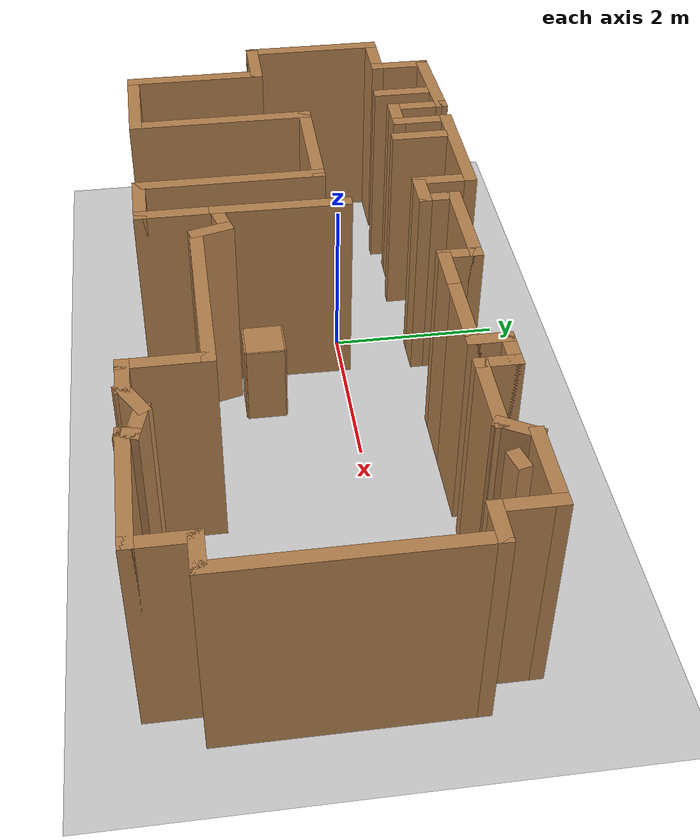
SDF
<sdf version="1.7">
 <world name="default">
  <light name="sun" type="directional">
   <pose>0 0 10 0 -0 0</pose>
   <diffuse>0.8 0.8 0.8 1</diffuse>
   <specular>0.2 0.2 0.2 1</specular>
   <attenuation>
    <range>1000</range>
    <constant>0.9</constant>
    <linear>0.01</linear>
    <quadratic>0.001</quadratic>
   </attenuation>
   <direction>-0.5 0.1 -0.9</direction>
   <spot><inner_angle>0</inner_angle><outer_angle>0</outer_angle><falloff>0</falloff></spot>
  </light>
  <model name="ground_plane">
   <static>1</static>
   <link name="link">
    <collision name="collision">
     <geometry><plane><normal>0 0 1</normal><size>100 100</size></plane></geometry>
     <surface>
      <contact><collide_bitmask>65535</collide_bitmask></contact>
      <friction><ode><mu>100</mu><mu2>50</mu2></ode></friction>
     </surface>
    </collision>
    <visual name="visual">
     <cast_shadows>0</cast_shadows>
     <geometry><plane><normal>0 0 1</normal><size>100 100</size></plane></geometry>
     <material>
      <script><uri>file://media/materials/scripts/gazebo.material</uri><name>Gazebo/Grey</name></script>
     </material>
    </visual>
   </link>
  </model>
  <gravity>0 0 -9.8</gravity>
  <magnetic_field>6e-06 2.3e-05 -4.2e-05</magnetic_field>
  <atmosphere type="adiabatic"/>
  <physics name="default_physics" default="0" type="ode">
   <max_step_size>0.001</max_step_size>
   <real_time_factor>1</real_time_factor>
   <real_time_update_rate>1000</real_time_update_rate>
  </physics>
  <scene><ambient>0.4 0.4 0.4 1</ambient><background>0.7 0.7 0.7 1</background><shadows>1</shadows></scene>
  <audio><device>default</device></audio>
  <spherical_coordinates>
   <surface_model>EARTH_WGS84</surface_model>
   <latitude_deg>0</latitude_deg>
   <longitude_deg>0</longitude_deg>
   <elevation>0</elevation>
   <heading_deg>0</heading_deg>
  </spherical_coordinates>
  <model name="map_18">
   <pose>1.21527 -0.53086 0 0 -0 0</pose>
   <link name="Wall_10">
    <collision name="Wall_10_Collision">
     <geometry><box><size>1.25 0.15 2.5</size></box></geometry>
     <pose>0 0 1.25 0 -0 0</pose>
    </collision>
    <visual name="Wall_10_Visual">
     <pose>0 0 1.25 0 -0 0</pose>
     <geometry><box><size>1.25 0.15 2.5</size></box></geometry>
     <material>
      <script><uri>file://media/materials/scripts/gazebo.material</uri><name>Gazebo/Wood</name></script>
      <ambient>1 1 1 1</ambient>
     </material>
     <meta><layer>0</layer></meta>
    </visual>
    <pose>-3.27198 -1.78163 0 0 -0 0</pose>
   </link>
   <link name="Wall_11">
    <collision name="Wall_11_Collision">
     <geometry><box><size>2.25 0.15 2.5</size></box></geometry>
     <pose>0 0 1.25 0 -0 0</pose>
    </collision>
    <visual name="Wall_11_Visual">
     <pose>0 0 1.25 0 -0 0</pose>
     <geometry><box><size>2.25 0.15 2.5</size></box></geometry>
     <material>
      <script><uri>file://media/materials/scripts/gazebo.material</uri><name>Gazebo/Wood</name></script>
      <ambient>1 1 1 1</ambient>
     </material>
     <meta><layer>0</layer></meta>
    </visual>
    <pose>-2.72198 -0.731633 0 0 -0 1.5708</pose>
   </link>
   <link name="Wall_12">
    <collision name="Wall_12_Collision">
     <geometry><box><size>1.5 0.15 2.5</size></box></geometry>
     <pose>0 0 1.25 0 -0 0</pose>
    </collision>
    <visual name="Wall_12_Visual">
     <pose>0 0 1.25 0 -0 0</pose>
     <geometry><box><size>1.5 0.15 2.5</size></box></geometry>
     <material>
      <script><uri>file://media/materials/scripts/gazebo.material</uri><name>Gazebo/Wood</name></script>
      <ambient>1 1 1 1</ambient>
     </material>
     <meta><layer>0</layer></meta>
    </visual>
    <pose>-2.04698 0.318367 0 0 -0 0</pose>
   </link>
   <link name="Wall_13">
    <collision name="Wall_13_Collision">
     <geometry><box><size>2.25 0.15 2.5</size></box></geometry>
     <pose>0 0 1.25 0 -0 0</pose>
    </collision>
    <visual name="Wall_13_Visual">
     <pose>0 0 1.25 0 -0 0</pose>
     <geometry><box><size>2.25 0.15 2.5</size></box></geometry>
     <material>
      <script><uri>file://media/materials/scripts/gazebo.material</uri><name>Gazebo/Wood</name></script>
      <ambient>1 1 1 1</ambient>
     </material>
     <meta><layer>0</layer></meta>
    </visual>
    <pose>-1.37198 -0.731633 0 0 -0 -1.5708</pose>
   </link>
   <link name="Wall_14">
    <collision name="Wall_14_Collision">
     <geometry><box><size>0.75 0.15 2.5</size></box></geometry>
     <pose>0 0 1.25 0 -0 0</pose>
    </collision>
    <visual name="Wall_14_Visual">
     <pose>0 0 1.25 0 -0 0</pose>
     <geometry><box><size>0.75 0.15 2.5</size></box></geometry>
     <material>
      <script><uri>file://media/materials/scripts/gazebo.material</uri><name>Gazebo/Wood</name></script>
      <ambient>1 1 1 1</ambient>
     </material>
     <meta><layer>0</layer></meta>
    </visual>
    <pose>-1.07198 -1.78163 0 0 -0 0</pose>
   </link>
   <link name="Wall_15">
    <collision name="Wall_15_Collision">
     <geometry><box><size>1 0.15 2.5</size></box></geometry>
     <pose>0 0 1.25 0 -0 0</pose>
    </collision>
    <visual name="Wall_15_Visual">
     <pose>0 0 1.25 0 -0 0</pose>
     <geometry><box><size>1 0.15 2.5</size></box></geometry>
     <material>
      <script><uri>file://media/materials/scripts/gazebo.material</uri><name>Gazebo/Wood</name></script>
      <ambient>1 1 1 1</ambient>
     </material>
     <meta><layer>0</layer></meta>
    </visual>
    <pose>-0.771981 -1.35663 0 0 -0 1.5708</pose>
   </link>
   <link name="Wall_16">
    <collision name="Wall_16_Collision">
     <geometry><box><size>0.5 0.15 2.5</size></box></geometry>
     <pose>0 0 1.25 0 -0 0</pose>
    </collision>
    <visual name="Wall_16_Visual">
     <pose>0 0 1.25 0 -0 0</pose>
     <geometry><box><size>0.5 0.15 2.5</size></box></geometry>
     <material>
      <script><uri>file://media/materials/scripts/gazebo.material</uri><name>Gazebo/Wood</name></script>
      <ambient>1 1 1 1</ambient>
     </material>
     <meta><layer>0</layer></meta>
    </visual>
    <pose>-0.602944 -0.88634 0 0 -0 0.261799</pose>
   </link>
   <link name="Wall_17">
    <collision name="Wall_17_Collision">
     <geometry><box><size>0.5 0.15 2.5</size></box></geometry>
     <pose>0 0 1.25 0 -0 0</pose>
    </collision>
    <visual name="Wall_17_Visual">
     <pose>0 0 1.25 0 -0 0</pose>
     <geometry><box><size>0.5 0.15 2.5</size></box></geometry>
     <material>
      <script><uri>file://media/materials/scripts/gazebo.material</uri><name>Gazebo/Wood</name></script>
      <ambient>1 1 1 1</ambient>
     </material>
     <meta><layer>0</layer></meta>
    </visual>
    <pose>-0.388613 -1.01008 0 0 -0 -1.309</pose>
   </link>
   <link name="Wall_18">
    <collision name="Wall_18_Collision">
     <geometry><box><size>2.25 0.15 2.5</size></box></geometry>
     <pose>0 0 1.25 0 -0 0</pose>
    </collision>
    <visual name="Wall_18_Visual">
     <pose>0 0 1.25 0 -0 0</pose>
     <geometry><box><size>2.25 0.15 2.5</size></box></geometry>
     <material>
      <script><uri>file://media/materials/scripts/gazebo.material</uri><name>Gazebo/Wood</name></script>
      <ambient>1 1 1 1</ambient>
     </material>
     <meta><layer>0</layer></meta>
    </visual>
    <pose>0.70668 -1.17912 0 0 -0 0</pose>
   </link>
   <link name="Wall_19">
    <collision name="Wall_19_Collision">
     <geometry><box><size>1 0.15 2.5</size></box></geometry>
     <pose>0 0 1.25 0 -0 0</pose>
    </collision>
    <visual name="Wall_19_Visual">
     <pose>0 0 1.25 0 -0 0</pose>
     <geometry><box><size>1 0.15 2.5</size></box></geometry>
     <material>
      <script><uri>file://media/materials/scripts/gazebo.material</uri><name>Gazebo/Wood</name></script>
      <ambient>1 1 1 1</ambient>
     </material>
     <meta><layer>0</layer></meta>
    </visual>
    <pose>1.75668 -1.60412 0 0 -0 -1.5708</pose>
   </link>
   <link name="Wall_20">
    <collision name="Wall_20_Collision">
     <geometry><box><size>0.5 0.15 2.5</size></box></geometry>
     <pose>0 0 1.25 0 -0 0</pose>
    </collision>
    <visual name="Wall_20_Visual">
     <pose>0 0 1.25 0 -0 0</pose>
     <geometry><box><size>0.5 0.15 2.5</size></box></geometry>
     <material>
      <script><uri>file://media/materials/scripts/gazebo.material</uri><name>Gazebo/Wood</name></script>
      <ambient>1 1 1 1</ambient>
     </material>
     <meta><layer>0</layer></meta>
    </visual>
    <pose>1.93168 -2.02912 0 0 -0 0</pose>
   </link>
   <link name="Wall_21">
    <collision name="Wall_21_Collision">
     <geometry><box><size>0.5 0.15 2.5</size></box></geometry>
     <pose>0 0 1.25 0 -0 0</pose>
    </collision>
    <visual name="Wall_21_Visual">
     <pose>0 0 1.25 0 -0 0</pose>
     <geometry><box><size>0.5 0.15 2.5</size></box></geometry>
     <material>
      <script><uri>file://media/materials/scripts/gazebo.material</uri><name>Gazebo/Wood</name></script>
      <ambient>1 1 1 1</ambient>
     </material>
     <meta><layer>0</layer></meta>
    </visual>
    <pose>2.25823 -1.94162 0 0 -0 0.523599</pose>
   </link>
   <link name="Wall_25">
    <collision name="Wall_25_Collision">
     <geometry><box><size>0.5 0.15 2.5</size></box></geometry>
     <pose>0 0 1.25 0 -0 0</pose>
    </collision>
    <visual name="Wall_25_Visual">
     <pose>0 0 1.25 0 -0 0</pose>
     <geometry><box><size>0.5 0.15 2.5</size></box></geometry>
     <material>
      <script><uri>file://media/materials/scripts/gazebo.material</uri><name>Gazebo/Wood</name></script>
      <ambient>1 1 1 1</ambient>
     </material>
     <meta><layer>0</layer></meta>
    </visual>
    <pose>2.57883 -1.89941 0 0 -0 -0.261799</pose>
   </link>
   <link name="Wall_26">
    <collision name="Wall_26_Collision">
     <geometry><box><size>0.25 0.15 2.5</size></box></geometry>
     <pose>0 0 1.25 0 -0 0</pose>
    </collision>
    <visual name="Wall_26_Visual">
     <pose>0 0 1.25 0 -0 0</pose>
     <geometry><box><size>0.25 0.15 2.5</size></box></geometry>
     <material>
      <script><uri>file://media/materials/scripts/gazebo.material</uri><name>Gazebo/Wood</name></script>
      <ambient>1 1 1 1</ambient>
     </material>
     <meta><layer>0</layer></meta>
    </visual>
    <pose>2.73492 -1.993 0 0 -0 -1.8326</pose>
   </link>
   <link name="Wall_27">
    <collision name="Wall_27_Collision">
     <geometry><box><size>1.5 0.15 2.5</size></box></geometry>
     <pose>0 0 1.25 0 -0 0</pose>
    </collision>
    <visual name="Wall_27_Visual">
     <pose>0 0 1.25 0 -0 0</pose>
     <geometry><box><size>1.5 0.15 2.5</size></box></geometry>
     <material>
      <script><uri>file://media/materials/scripts/gazebo.material</uri><name>Gazebo/Wood</name></script>
      <ambient>1 1 1 1</ambient>
     </material>
     <meta><layer>0</layer></meta>
    </visual>
    <pose>3.39698 -2.0413 0 0 -0 0</pose>
   </link>
   <link name="Wall_28">
    <collision name="Wall_28_Collision">
     <geometry><box><size>0.75 0.15 2.5</size></box></geometry>
     <pose>0 0 1.25 0 -0 0</pose>
    </collision>
    <visual name="Wall_28_Visual">
     <pose>0 0 1.25 0 -0 0</pose>
     <geometry><box><size>0.75 0.15 2.5</size></box></geometry>
     <material>
      <script><uri>file://media/materials/scripts/gazebo.material</uri><name>Gazebo/Wood</name></script>
      <ambient>1 1 1 1</ambient>
     </material>
     <meta><layer>0</layer></meta>
    </visual>
    <pose>4.07198 -1.7413 0 0 -0 1.5708</pose>
   </link>
   <link name="Wall_29">
    <collision name="Wall_29_Collision">
     <geometry><box><size>0.5 0.15 2.5</size></box></geometry>
     <pose>0 0 1.25 0 -0 0</pose>
    </collision>
    <visual name="Wall_29_Visual">
     <pose>0 0 1.25 0 -0 0</pose>
     <geometry><box><size>0.5 0.15 2.5</size></box></geometry>
     <material>
      <script><uri>file://media/materials/scripts/gazebo.material</uri><name>Gazebo/Wood</name></script>
      <ambient>1 1 1 1</ambient>
     </material>
     <meta><layer>0</layer></meta>
    </visual>
    <pose>4.24698 -1.4413 0 0 -0 0</pose>
   </link>
   <link name="Wall_30">
    <collision name="Wall_30_Collision">
     <geometry><box><size>2.75 0.15 2.5</size></box></geometry>
     <pose>0 0 1.25 0 -0 0</pose>
    </collision>
    <visual name="Wall_30_Visual">
     <pose>0 0 1.25 0 -0 0</pose>
     <geometry><box><size>2.75 0.15 2.5</size></box></geometry>
     <material>
      <script><uri>file://media/materials/scripts/gazebo.material</uri><name>Gazebo/Wood</name></script>
      <ambient>1 1 1 1</ambient>
     </material>
     <meta><layer>0</layer></meta>
    </visual>
    <pose>4.42198 -0.1413 0 0 -0 1.5708</pose>
   </link>
   <link name="Wall_31">
    <collision name="Wall_31_Collision">
     <geometry><box><size>0.5 0.15 2.5</size></box></geometry>
     <pose>0 0 1.25 0 -0 0</pose>
    </collision>
    <visual name="Wall_31_Visual">
     <pose>0 0 1.25 0 -0 0</pose>
     <geometry><box><size>0.5 0.15 2.5</size></box></geometry>
     <material>
      <script><uri>file://media/materials/scripts/gazebo.material</uri><name>Gazebo/Wood</name></script>
      <ambient>1 1 1 1</ambient>
     </material>
     <meta><layer>0</layer></meta>
    </visual>
    <pose>4.24698 1.1587 0 0 -0 3.14159</pose>
   </link>
   <link name="Wall_32">
    <collision name="Wall_32_Collision">
     <geometry><box><size>0.75 0.15 2.5</size></box></geometry>
     <pose>0 0 1.25 0 -0 0</pose>
    </collision>
    <visual name="Wall_32_Visual">
     <pose>0 0 1.25 0 -0 0</pose>
     <geometry><box><size>0.75 0.15 2.5</size></box></geometry>
     <material>
      <script><uri>file://media/materials/scripts/gazebo.material</uri><name>Gazebo/Wood</name></script>
      <ambient>1 1 1 1</ambient>
     </material>
     <meta><layer>0</layer></meta>
    </visual>
    <pose>4.07198 1.4587 0 0 -0 1.5708</pose>
   </link>
   <link name="Wall_33">
    <collision name="Wall_33_Collision">
     <geometry><box><size>1 0.15 2.5</size></box></geometry>
     <pose>0 0 1.25 0 -0 0</pose>
    </collision>
    <visual name="Wall_33_Visual">
     <pose>0 0 1.25 0 -0 0</pose>
     <geometry><box><size>1 0.15 2.5</size></box></geometry>
     <material>
      <script><uri>file://media/materials/scripts/gazebo.material</uri><name>Gazebo/Wood</name></script>
      <ambient>1 1 1 1</ambient>
     </material>
     <meta><layer>0</layer></meta>
    </visual>
    <pose>3.64698 1.7587 0 0 -0 3.14159</pose>
   </link>
   <link name="Wall_38">
    <collision name="Wall_38_Collision">
     <geometry><box><size>0.5 0.15 2.5</size></box></geometry>
     <pose>0 0 1.25 0 -0 0</pose>
    </collision>
    <visual name="Wall_38_Visual">
     <pose>0 0 1.25 0 -0 0</pose>
     <geometry><box><size>0.5 0.15 2.5</size></box></geometry>
     <material>
      <script><uri>file://media/materials/scripts/gazebo.material</uri><name>Gazebo/Wood</name></script>
      <ambient>1 1 1 1</ambient>
     </material>
     <meta><layer>0</layer></meta>
    </visual>
    <pose>3.13448 1.60715 0 0 -0 -2.0944</pose>
   </link>
   <link name="Wall_39">
    <collision name="Wall_39_Collision">
     <geometry><box><size>1 0.15 2.5</size></box></geometry>
     <pose>0 0 1.25 0 -0 0</pose>
    </collision>
    <visual name="Wall_39_Visual">
     <pose>0 0 1.25 0 -0 0</pose>
     <geometry><box><size>1 0.15 2.5</size></box></geometry>
     <material>
      <script><uri>file://media/materials/scripts/gazebo.material</uri><name>Gazebo/Wood</name></script>
      <ambient>1 1 1 1</ambient>
     </material>
     <meta><layer>0</layer></meta>
    </visual>
    <pose>2.62198 1.45559 0 0 -0 3.14159</pose>
   </link>
   <link name="Wall_40">
    <collision name="Wall_40_Collision">
     <geometry><box><size>0.5 0.15 2.5</size></box></geometry>
     <pose>0 0 1.25 0 -0 0</pose>
    </collision>
    <visual name="Wall_40_Visual">
     <pose>0 0 1.25 0 -0 0</pose>
     <geometry><box><size>0.5 0.15 2.5</size></box></geometry>
     <material>
      <script><uri>file://media/materials/scripts/gazebo.material</uri><name>Gazebo/Wood</name></script>
      <ambient>1 1 1 1</ambient>
     </material>
     <meta><layer>0</layer></meta>
    </visual>
    <pose>2.19698 1.63059 0 0 -0 1.5708</pose>
   </link>
   <link name="Wall_41">
    <collision name="Wall_41_Collision">
     <geometry><box><size>0.5 0.15 2.5</size></box></geometry>
     <pose>0 0 1.25 0 -0 0</pose>
    </collision>
    <visual name="Wall_41_Visual">
     <pose>0 0 1.25 0 -0 0</pose>
     <geometry><box><size>0.5 0.15 2.5</size></box></geometry>
     <material>
      <script><uri>file://media/materials/scripts/gazebo.material</uri><name>Gazebo/Wood</name></script>
      <ambient>1 1 1 1</ambient>
     </material>
     <meta><layer>0</layer></meta>
    </visual>
    <pose>2.02198 1.80559 0 0 -0 3.14159</pose>
   </link>
   <link name="Wall_42">
    <collision name="Wall_42_Collision">
     <geometry><box><size>0.5 0.15 2.5</size></box></geometry>
     <pose>0 0 1.25 0 -0 0</pose>
    </collision>
    <visual name="Wall_42_Visual">
     <pose>0 0 1.25 0 -0 0</pose>
     <geometry><box><size>0.5 0.15 2.5</size></box></geometry>
     <material>
      <script><uri>file://media/materials/scripts/gazebo.material</uri><name>Gazebo/Wood</name></script>
      <ambient>1 1 1 1</ambient>
     </material>
     <meta><layer>0</layer></meta>
    </visual>
    <pose>1.84698 1.63059 0 0 -0 -1.5708</pose>
   </link>
   <link name="Wall_43">
    <collision name="Wall_43_Collision">
     <geometry><box><size>1 0.15 2.5</size></box></geometry>
     <pose>0 0 1.25 0 -0 0</pose>
    </collision>
    <visual name="Wall_43_Visual">
     <pose>0 0 1.25 0 -0 0</pose>
     <geometry><box><size>1 0.15 2.5</size></box></geometry>
     <material>
      <script><uri>file://media/materials/scripts/gazebo.material</uri><name>Gazebo/Wood</name></script>
      <ambient>1 1 1 1</ambient>
     </material>
     <meta><layer>0</layer></meta>
    </visual>
    <pose>1.42198 1.45559 0 0 -0 3.14159</pose>
   </link>
   <link name="Wall_44">
    <collision name="Wall_44_Collision">
     <geometry><box><size>0.75 0.15 2.5</size></box></geometry>
     <pose>0 0 1.25 0 -0 0</pose>
    </collision>
    <visual name="Wall_44_Visual">
     <pose>0 0 1.25 0 -0 0</pose>
     <geometry><box><size>0.75 0.15 2.5</size></box></geometry>
     <material>
      <script><uri>file://media/materials/scripts/gazebo.material</uri><name>Gazebo/Wood</name></script>
      <ambient>1 1 1 1</ambient>
     </material>
     <meta><layer>0</layer></meta>
    </visual>
    <pose>0.696981 1.45559 0 0 -0 3.14159</pose>
   </link>
   <link name="Wall_45">
    <collision name="Wall_45_Collision">
     <geometry><box><size>0.5 0.15 2.5</size></box></geometry>
     <pose>0 0 1.25 0 -0 0</pose>
    </collision>
    <visual name="Wall_45_Visual">
     <pose>0 0 1.25 0 -0 0</pose>
     <geometry><box><size>0.5 0.15 2.5</size></box></geometry>
     <material>
      <script><uri>file://media/materials/scripts/gazebo.material</uri><name>Gazebo/Wood</name></script>
      <ambient>1 1 1 1</ambient>
     </material>
     <meta><layer>0</layer></meta>
    </visual>
    <pose>0.396981 1.63059 0 0 -0 1.5708</pose>
   </link>
   <link name="Wall_46">
    <collision name="Wall_46_Collision">
     <geometry><box><size>1.25 0.15 2.5</size></box></geometry>
     <pose>0 0 1.25 0 -0 0</pose>
    </collision>
    <visual name="Wall_46_Visual">
     <pose>0 0 1.25 0 -0 0</pose>
     <geometry><box><size>1.25 0.15 2.5</size></box></geometry>
     <material>
      <script><uri>file://media/materials/scripts/gazebo.material</uri><name>Gazebo/Wood</name></script>
      <ambient>1 1 1 1</ambient>
     </material>
     <meta><layer>0</layer></meta>
    </visual>
    <pose>-0.153019 1.80559 0 0 -0 3.14159</pose>
   </link>
   <link name="Wall_47">
    <collision name="Wall_47_Collision">
     <geometry><box><size>0.5 0.15 2.5</size></box></geometry>
     <pose>0 0 1.25 0 -0 0</pose>
    </collision>
    <visual name="Wall_47_Visual">
     <pose>0 0 1.25 0 -0 0</pose>
     <geometry><box><size>0.5 0.15 2.5</size></box></geometry>
     <material>
      <script><uri>file://media/materials/scripts/gazebo.material</uri><name>Gazebo/Wood</name></script>
      <ambient>1 1 1 1</ambient>
     </material>
     <meta><layer>0</layer></meta>
    </visual>
    <pose>-0.703019 1.63059 0 0 -0 -1.5708</pose>
   </link>
   <link name="Wall_48">
    <collision name="Wall_48_Collision">
     <geometry><box><size>0.5 0.15 2.5</size></box></geometry>
     <pose>0 0 1.25 0 -0 0</pose>
    </collision>
    <visual name="Wall_48_Visual">
     <pose>0 0 1.25 0 -0 0</pose>
     <geometry><box><size>0.5 0.15 2.5</size></box></geometry>
     <material>
      <script><uri>file://media/materials/scripts/gazebo.material</uri><name>Gazebo/Wood</name></script>
      <ambient>1 1 1 1</ambient>
     </material>
     <meta><layer>0</layer></meta>
    </visual>
    <pose>-0.878019 1.45559 0 0 -0 3.14159</pose>
   </link>
   <link name="Wall_5">
    <collision name="Wall_5_Collision">
     <geometry><box><size>0.75 0.15 2.5</size></box></geometry>
     <pose>0 0 1.25 0 -0 0</pose>
    </collision>
    <visual name="Wall_5_Visual">
     <pose>0 0 1.25 0 -0 0</pose>
     <geometry><box><size>0.75 0.15 2.5</size></box></geometry>
     <material>
      <script><uri>file://media/materials/scripts/gazebo.material</uri><name>Gazebo/Wood</name></script>
      <ambient>1 1 1 1</ambient>
     </material>
     <meta><layer>0</layer></meta>
    </visual>
    <pose>-3.82198 1.71837 0 0 -0 -1.5708</pose>
   </link>
   <link name="Wall_51">
    <collision name="Wall_51_Collision">
     <geometry><box><size>0.75 0.15 2.5</size></box></geometry>
     <pose>0 0 1.25 0 -0 0</pose>
    </collision>
    <visual name="Wall_51_Visual">
     <pose>0 0 1.25 0 -0 0</pose>
     <geometry><box><size>0.75 0.15 2.5</size></box></geometry>
     <material>
      <script><uri>file://media/materials/scripts/gazebo.material</uri><name>Gazebo/Wood</name></script>
      <ambient>1 1 1 1</ambient>
     </material>
     <meta><layer>0</layer></meta>
    </visual>
    <pose>-1.05302 1.75559 0 0 -0 1.5708</pose>
   </link>
   <link name="Wall_52">
    <collision name="Wall_52_Collision">
     <geometry><box><size>1.5 0.15 2.5</size></box></geometry>
     <pose>0 0 1.25 0 -0 0</pose>
    </collision>
    <visual name="Wall_52_Visual">
     <pose>0 0 1.25 0 -0 0</pose>
     <geometry><box><size>1.5 0.15 2.5</size></box></geometry>
     <material>
      <script><uri>file://media/materials/scripts/gazebo.material</uri><name>Gazebo/Wood</name></script>
      <ambient>1 1 1 1</ambient>
     </material>
     <meta><layer>0</layer></meta>
    </visual>
    <pose>-1.72802 2.05559 0 0 -0 3.14159</pose>
   </link>
   <link name="Wall_53">
    <collision name="Wall_53_Collision">
     <geometry><box><size>0.75 0.15 2.5</size></box></geometry>
     <pose>0 0 1.25 0 -0 0</pose>
    </collision>
    <visual name="Wall_53_Visual">
     <pose>0 0 1.25 0 -0 0</pose>
     <geometry><box><size>0.75 0.15 2.5</size></box></geometry>
     <material>
      <script><uri>file://media/materials/scripts/gazebo.material</uri><name>Gazebo/Wood</name></script>
      <ambient>1 1 1 1</ambient>
     </material>
     <meta><layer>0</layer></meta>
    </visual>
    <pose>-2.40302 1.75559 0 0 -0 -1.5708</pose>
   </link>
   <link name="Wall_54">
    <collision name="Wall_54_Collision">
     <geometry><box><size>0.5 0.15 2.5</size></box></geometry>
     <pose>0 0 1.25 0 -0 0</pose>
    </collision>
    <visual name="Wall_54_Visual">
     <pose>0 0 1.25 0 -0 0</pose>
     <geometry><box><size>0.5 0.15 2.5</size></box></geometry>
     <material>
      <script><uri>file://media/materials/scripts/gazebo.material</uri><name>Gazebo/Wood</name></script>
      <ambient>1 1 1 1</ambient>
     </material>
     <meta><layer>0</layer></meta>
    </visual>
    <pose>-2.57802 1.45559 0 0 -0 3.14159</pose>
   </link>
   <link name="Wall_55">
    <collision name="Wall_55_Collision">
     <geometry><box><size>0.75 0.15 2.5</size></box></geometry>
     <pose>0 0 1.25 0 -0 0</pose>
    </collision>
    <visual name="Wall_55_Visual">
     <pose>0 0 1.25 0 -0 0</pose>
     <geometry><box><size>0.75 0.15 2.5</size></box></geometry>
     <material>
      <script><uri>file://media/materials/scripts/gazebo.material</uri><name>Gazebo/Wood</name></script>
      <ambient>1 1 1 1</ambient>
     </material>
     <meta><layer>0</layer></meta>
    </visual>
    <pose>-2.75302 1.75559 0 0 -0 1.5708</pose>
   </link>
   <link name="Wall_56">
    <collision name="Wall_56_Collision">
     <geometry><box><size>1.21961 0.15 2.5</size></box></geometry>
     <pose>0 0 1.25 0 -0 0</pose>
    </collision>
    <visual name="Wall_56_Visual">
     <pose>0 0 1.25 0 -0 0</pose>
     <geometry><box><size>1.21961 0.15 2.5</size></box></geometry>
     <material>
      <script><uri>file://media/materials/scripts/gazebo.material</uri><name>Gazebo/Wood</name></script>
      <ambient>1 1 1 1</ambient>
     </material>
     <meta><layer>0</layer></meta>
    </visual>
    <pose>-3.2875 2.03698 0 0 -0 -3.10678</pose>
   </link>
   <link name="Wall_58">
    <collision name="Wall_58_Collision">
     <geometry><box><size>1.63214 0.15 2.5</size></box></geometry>
     <pose>0 0 1.25 0 -0 0</pose>
    </collision>
    <visual name="Wall_58_Visual">
     <pose>0 0 1.25 0 -0 0</pose>
     <geometry><box><size>1.63214 0.15 2.5</size></box></geometry>
     <material>
      <script><uri>file://media/materials/scripts/gazebo.material</uri><name>Gazebo/Wood</name></script>
      <ambient>1 1 1 1</ambient>
     </material>
     <meta><layer>0</layer></meta>
    </visual>
    <pose>-0.762881 -0.190621 0 0 -0 -1.58308</pose>
   </link>
   <link name="Wall_6">
    <collision name="Wall_6_Collision">
     <geometry><box><size>0.75 0.15 2.5</size></box></geometry>
     <pose>0 0 1.25 0 -0 0</pose>
    </collision>
    <visual name="Wall_6_Visual">
     <pose>0 0 1.25 0 -0 0</pose>
     <geometry><box><size>0.75 0.15 2.5</size></box></geometry>
     <material>
      <script><uri>file://media/materials/scripts/gazebo.material</uri><name>Gazebo/Wood</name></script>
      <ambient>1 1 1 1</ambient>
     </material>
     <meta><layer>0</layer></meta>
    </visual>
    <pose>-4.12198 1.41837 0 0 -0 3.14159</pose>
   </link>
   <link name="Wall_64">
    <collision name="Wall_64_Collision">
     <geometry><box><size>0.75 0.15 2.5</size></box></geometry>
     <pose>0 0 1.25 0 -0 0</pose>
    </collision>
    <visual name="Wall_64_Visual">
     <pose>0 0 1.25 0 -0 0</pose>
     <geometry><box><size>0.75 0.15 2.5</size></box></geometry>
     <material>
      <script><uri>file://media/materials/scripts/gazebo.material</uri><name>Gazebo/Wood</name></script>
      <ambient>1 1 1 1</ambient>
     </material>
     <meta><layer>0</layer></meta>
    </visual>
    <pose>-3.12106 1.63902 0 0 -0 -1.5708</pose>
   </link>
   <link name="Wall_66">
    <collision name="Wall_66_Collision">
     <geometry><box><size>0.75 0.15 2.5</size></box></geometry>
     <pose>0 0 1.25 0 -0 0</pose>
    </collision>
    <visual name="Wall_66_Visual">
     <pose>0 0 1.25 0 -0 0</pose>
     <geometry><box><size>0.75 0.15 2.5</size></box></geometry>
     <material>
      <script><uri>file://media/materials/scripts/gazebo.material</uri><name>Gazebo/Wood</name></script>
      <ambient>1 1 1 1</ambient>
     </material>
     <meta><layer>0</layer></meta>
    </visual>
    <pose>-2.04983 1.68357 0 0 -0 1.5708</pose>
   </link>
   <link name="Wall_69">
    <collision name="Wall_69_Collision">
     <geometry><box><size>0.25 0.15 2.5</size></box></geometry>
     <pose>0 0 1.25 0 -0 0</pose>
    </collision>
    <visual name="Wall_69_Visual">
     <pose>0 0 1.25 0 -0 0</pose>
     <geometry><box><size>0.25 0.15 2.5</size></box></geometry>
     <material>
      <script><uri>file://media/materials/scripts/gazebo.material</uri><name>Gazebo/Wood</name></script>
      <ambient>1 1 1 1</ambient>
     </material>
     <meta><layer>0</layer></meta>
    </visual>
    <pose>3.53572 1.50288 0 0 -0 -2.87979</pose>
   </link>
   <link name="Wall_7">
    <collision name="Wall_7_Collision">
     <geometry><box><size>1.75 0.15 2.5</size></box></geometry>
     <pose>0 0 1.25 0 -0 0</pose>
    </collision>
    <visual name="Wall_7_Visual">
     <pose>0 0 1.25 0 -0 0</pose>
     <geometry><box><size>1.75 0.15 2.5</size></box></geometry>
     <material>
      <script><uri>file://media/materials/scripts/gazebo.material</uri><name>Gazebo/Wood</name></script>
      <ambient>1 1 1 1</ambient>
     </material>
     <meta><layer>0</layer></meta>
    </visual>
    <pose>-4.42198 0.618367 0 0 -0 -1.5708</pose>
   </link>
   <link name="Wall_8">
    <collision name="Wall_8_Collision">
     <geometry><box><size>0.75 0.15 2.5</size></box></geometry>
     <pose>0 0 1.25 0 -0 0</pose>
    </collision>
    <visual name="Wall_8_Visual">
     <pose>0 0 1.25 0 -0 0</pose>
     <geometry><box><size>0.75 0.15 2.5</size></box></geometry>
     <material>
      <script><uri>file://media/materials/scripts/gazebo.material</uri><name>Gazebo/Wood</name></script>
      <ambient>1 1 1 1</ambient>
     </material>
     <meta><layer>0</layer></meta>
    </visual>
    <pose>-4.12198 -0.181633 0 0 -0 0</pose>
   </link>
   <link name="Wall_9">
    <collision name="Wall_9_Collision">
     <geometry><box><size>1.75 0.15 2.5</size></box></geometry>
     <pose>0 0 1.25 0 -0 0</pose>
    </collision>
    <visual name="Wall_9_Visual">
     <pose>0 0 1.25 0 -0 0</pose>
     <geometry><box><size>1.75 0.15 2.5</size></box></geometry>
     <material>
      <script><uri>file://media/materials/scripts/gazebo.material</uri><name>Gazebo/Wood</name></script>
      <ambient>1 1 1 1</ambient>
     </material>
     <meta><layer>0</layer></meta>
    </visual>
    <pose>-3.82198 -0.981633 0 0 -0 -1.5708</pose>
   </link>
   <static>1</static>
  </model>
  <model name="cabinet">
   <static>1</static>
   <link name="cabinet_bottom_plate">
    <inertial>
     <pose>0 0 -1 0 -0 0</pose>
     <inertia><ixx>2.05</ixx><ixy>0</ixy><ixz>0</ixz><iyy>2.05</iyy><iyz>0</iyz><izz>2.05</izz></inertia>
     <mass>25</mass>
    </inertial>
    <collision name="cabinet_bottom_plate_geom">
     <pose>0 0 0.01 0 -0 0</pose>
     <geometry><box><size>0.45 0.45 0.02</size></box></geometry>
    </collision>
    <visual name="cabinet_bottom_plate_geom_visual">
     <pose>0 0 0.01 0 -0 0</pose>
     <geometry><box><size>0.45 0.45 0.02</size></box></geometry>
     <material>
      <script><uri>file://media/materials/scripts/gazebo.material</uri><name>Gazebo/Wood</name></script>
     </material>
    </visual>
    <collision name="cabinet_bottom_plate_geom_cabinet_back_plate">
     <pose>0.235 0 0.51 0 -0 0</pose>
     <geometry><box><size>0.02 0.45 1.02</size></box></geometry>
    </collision>
    <visual name="cabinet_bottom_plate_geom_cabinet_back_plate_visual">
     <pose>0.235 0 0.51 0 -0 0</pose>
     <geometry><box><size>0.02 0.45 1.02</size></box></geometry>
     <material>
      <script><uri>file://media/materials/scripts/gazebo.material</uri><name>Gazebo/Wood</name></script>
     </material>
    </visual>
    <collision name="cabinet_bottom_plate_geom_cabinet_left_plate">
     <pose>0 0.235 0.51 0 -0 0</pose>
     <geometry><box><size>0.45 0.02 1.02</size></box></geometry>
    </collision>
    <visual name="cabinet_bottom_plate_geom_cabinet_left_plate_visual">
     <pose>0 0.235 0.51 0 -0 0</pose>
     <geometry><box><size>0.45 0.02 1.02</size></box></geometry>
     <material>
      <script><uri>file://media/materials/scripts/gazebo.material</uri><name>Gazebo/Wood</name></script>
     </material>
    </visual>
    <collision name="cabinet_bottom_plate_geom_cabinet_middle_plate">
     <pose>0 0 0.51 0 -0 0</pose>
     <geometry><box><size>0.45 0.45 0.02</size></box></geometry>
    </collision>
    <visual name="cabinet_bottom_plate_geom_cabinet_middle_plate_visual">
     <pose>0 0 0.51 0 -0 0</pose>
     <geometry><box><size>0.45 0.45 0.02</size></box></geometry>
     <material>
      <script><uri>file://media/materials/scripts/gazebo.material</uri><name>Gazebo/Wood</name></script>
     </material>
    </visual>
    <collision name="cabinet_bottom_plate_geom_cabinet_right_plate">
     <pose>0 -0.235 0.51 0 -0 0</pose>
     <geometry><box><size>0.45 0.02 1.02</size></box></geometry>
    </collision>
    <visual name="cabinet_bottom_plate_geom_cabinet_right_plate_visual">
     <pose>0 -0.235 0.51 0 -0 0</pose>
     <geometry><box><size>0.45 0.02 1.02</size></box></geometry>
     <material>
      <script><uri>file://media/materials/scripts/gazebo.material</uri><name>Gazebo/Wood</name></script>
     </material>
    </visual>
    <collision name="cabinet_bottom_plate_geom_cabinet_top_plate">
     <pose>0 0 1.01 0 -0 0</pose>
     <geometry><box><size>0.45 0.45 0.02</size></box></geometry>
    </collision>
    <visual name="cabinet_bottom_plate_geom_cabinet_top_plate_visual">
     <pose>0 0 1.01 0 -0 0</pose>
     <geometry><box><size>0.45 0.45 0.02</size></box></geometry>
     <material>
      <script><uri>file://media/materials/scripts/gazebo.material</uri><name>Gazebo/Wood</name></script>
     </material>
    </visual>
   </link>
   <pose>1.01693 -1.01738 0 0 -0 0</pose>
  </model>
 </world>
</sdf>
